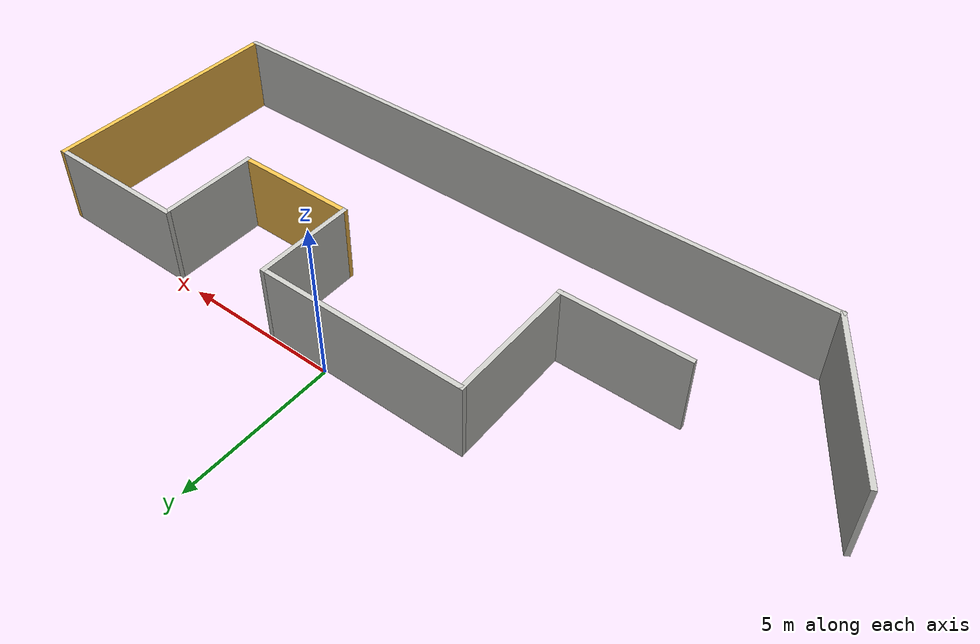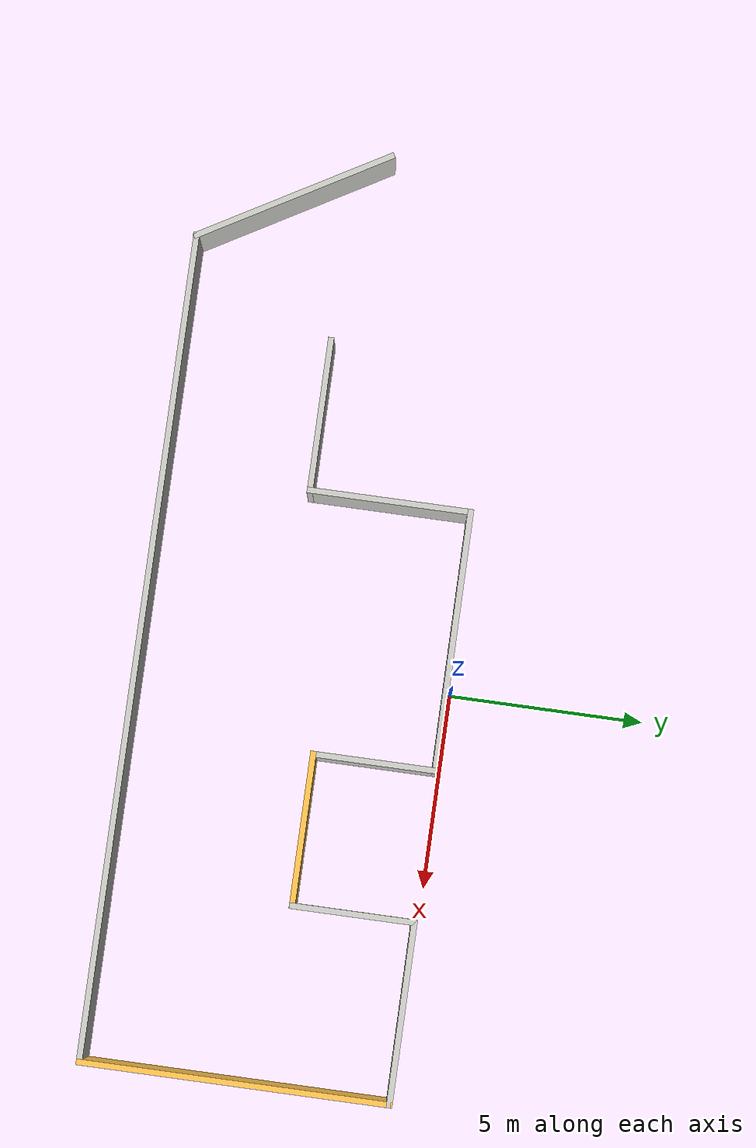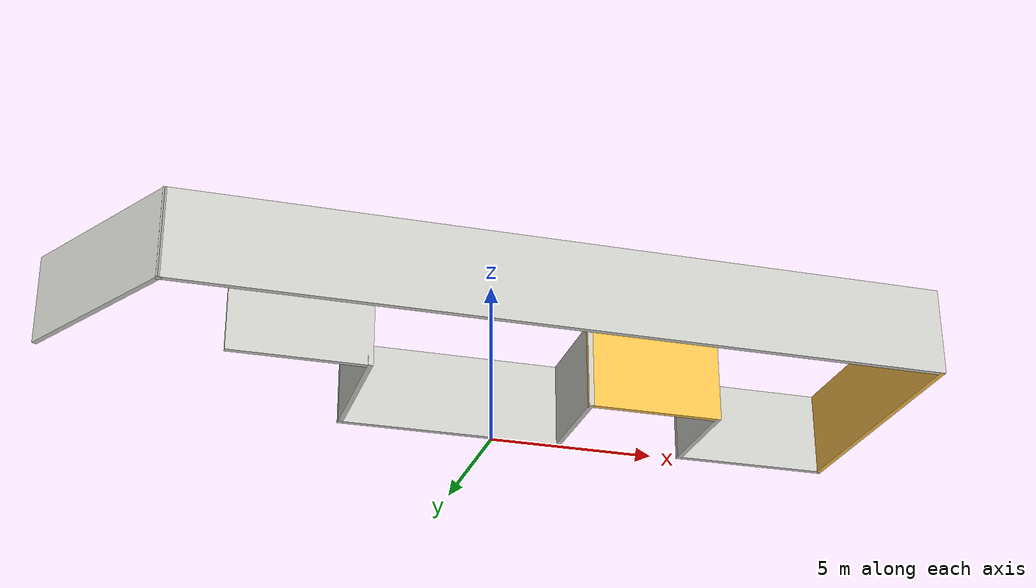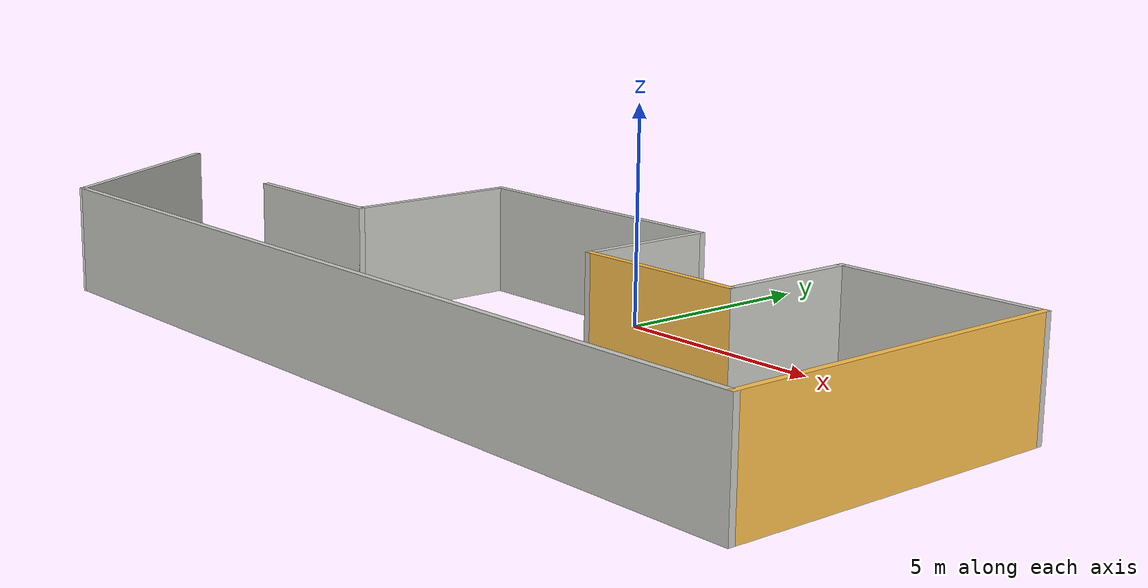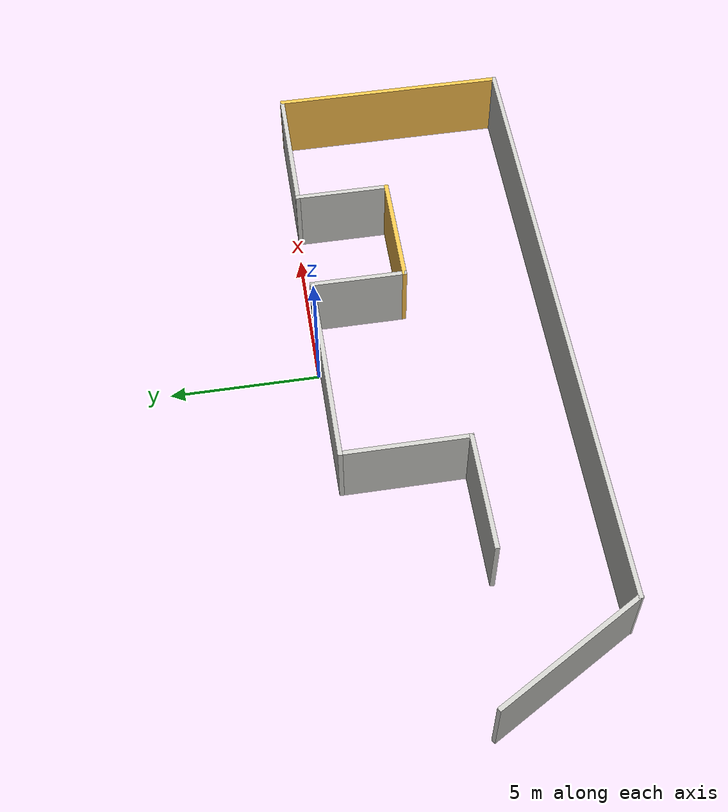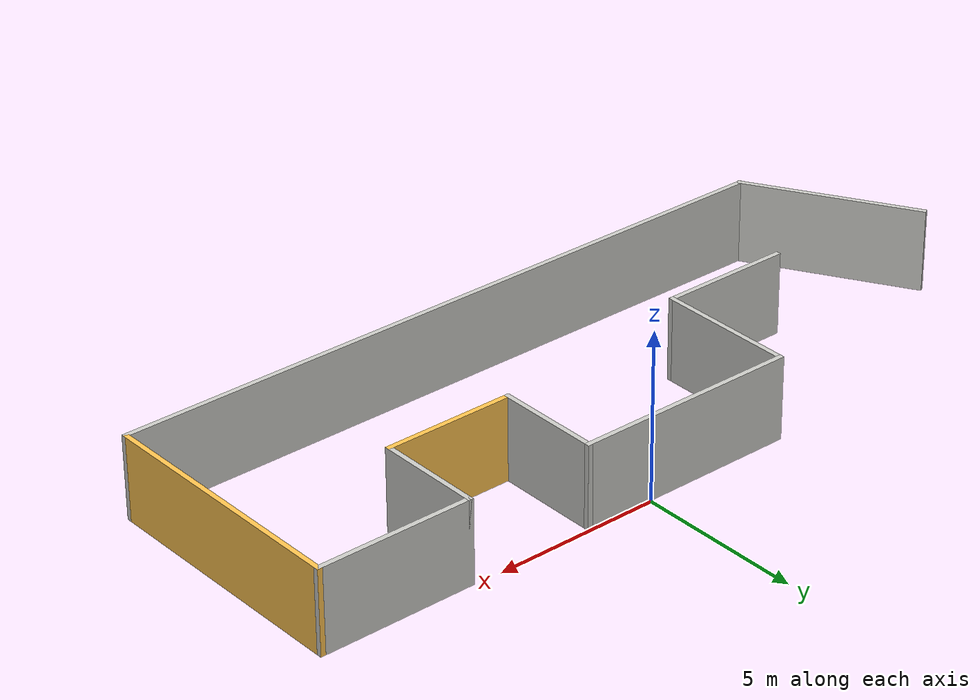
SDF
<?xml version='1.0'?>
<sdf version='1.7'>
  <model name='well'>
    <pose>-1.41551 -4.03664 0 0 -0 0</pose>
    <link name='Wall_37'>
      <collision name='Wall_37_Collision'>
        <geometry>
          <box>
            <size>3.25 0.15 2.5</size>
          </box>
        </geometry>
        <pose>0 0 1.25 0 -0 0</pose>
      </collision>
      <visual name='Wall_37_Visual'>
        <pose>0 0 1.25 0 -0 0</pose>
        <geometry>
          <box>
            <size>3.25 0.15 2.5</size>
          </box>
        </geometry>
        <material>
          <script>
            <uri>file://media/materials/scripts/gazebo.material</uri>
            <name>Gazebo/CeilingTiled</name>
          </script>
          <ambient>1 0.764706 0.305882 1</ambient>
        </material>
        <meta>
          <layer>0</layer>
        </meta>
      </visual>
      <pose>7.30123 2.36581 0 0 -0 1.5708</pose>
    </link>
    <link name='Wall_38'>
      <collision name='Wall_38_Collision'>
        <geometry>
          <box>
            <size>4.75 0.15 2.5</size>
          </box>
        </geometry>
        <pose>0 0 1.25 0 -0 0</pose>
      </collision>
      <visual name='Wall_38_Visual'>
        <pose>0 0 1.25 0 -0 0</pose>
        <geometry>
          <box>
            <size>4.75 0.15 2.5</size>
          </box>
        </geometry>
        <material>
          <script>
            <uri>file://media/materials/scripts/gazebo.material</uri>
            <name>Gazebo/CeilingTiled</name>
          </script>
          <ambient>1 0.764706 0.305882 1</ambient>
        </material>
        <meta>
          <layer>0</layer>
        </meta>
      </visual>
      <pose>9.60122 3.91581 0 0 -0 0</pose>
    </link>
    <link name='Wall_44'>
      <collision name='Wall_44_Collision'>
        <geometry>
          <box>
            <size>4 0.15 2.5</size>
          </box>
        </geometry>
        <pose>0 0 1.25 0 -0 0</pose>
      </collision>
      <visual name='Wall_44_Visual'>
        <pose>0 0 1.25 0 -0 0</pose>
        <geometry>
          <box>
            <size>4 0.15 2.5</size>
          </box>
        </geometry>
        <material>
          <script>
            <uri>file://media/materials/scripts/gazebo.material</uri>
            <name>Gazebo/Grey</name>
          </script>
          <ambient>1 0.764706 0.305882 1</ambient>
        </material>
        <meta>
          <layer>0</layer>
        </meta>
      </visual>
      <pose>5.37623 0.815813 0 0 -0 3.14159</pose>
    </link>
    <link name='Wall_45'>
      <collision name='Wall_45_Collision'>
        <geometry>
          <box>
            <size>3.25 0.15 2.5</size>
          </box>
        </geometry>
        <pose>0 0 1.25 0 -0 0</pose>
      </collision>
      <visual name='Wall_45_Visual'>
        <pose>0 0 1.25 0 -0 0</pose>
        <geometry>
          <box>
            <size>3.25 0.15 2.5</size>
          </box>
        </geometry>
        <material>
          <script>
            <uri>file://media/materials/scripts/gazebo.material</uri>
            <name>Gazebo/CeilingTiled</name>
          </script>
          <ambient>1 0.764706 0.305882 1</ambient>
        </material>
        <meta>
          <layer>0</layer>
        </meta>
      </visual>
      <pose>3.45123 2.36581 0 0 -0 1.5708</pose>
    </link>
    <link name='Wall_46'>
      <collision name='Wall_46_Collision'>
        <geometry>
          <box>
            <size>6.75 0.15 2.5</size>
          </box>
        </geometry>
        <pose>0 0 1.25 0 -0 0</pose>
      </collision>
      <visual name='Wall_46_Visual'>
        <pose>0 0 1.25 0 -0 0</pose>
        <geometry>
          <box>
            <size>6.75 0.15 2.5</size>
          </box>
        </geometry>
        <material>
          <script>
            <uri>file://media/materials/scripts/gazebo.material</uri>
            <name>Gazebo/CeilingTiled</name>
          </script>
          <ambient>1 0.764706 0.305882 1</ambient>
        </material>
        <meta>
          <layer>0</layer>
        </meta>
      </visual>
      <pose>0.151226 3.91581 0 0 -0 3.14159</pose>
    </link>
    <link name='Wall_50'>
      <collision name='Wall_50_Collision'>
        <geometry>
          <box>
            <size>4.25 0.15 2.5</size>
          </box>
        </geometry>
        <pose>0 0 1.25 0 -0 0</pose>
      </collision>
      <visual name='Wall_50_Visual'>
        <pose>0 0 1.25 0 -0 0</pose>
        <geometry>
          <box>
            <size>4.25 0.15 2.5</size>
          </box>
        </geometry>
        <material>
          <script>
            <uri>file://media/materials/scripts/gazebo.material</uri>
            <name>Gazebo/CeilingTiled</name>
          </script>
          <ambient>1 0.764706 0.305882 1</ambient>
        </material>
        <meta>
          <layer>0</layer>
        </meta>
      </visual>
      <pose>-3.14877 1.86581 0 0 -0 -1.5708</pose>
    </link>
    <link name='Wall_54'>
      <collision name='Wall_54_Collision'>
        <geometry>
          <box>
            <size>8 0.15 2.5</size>
          </box>
        </geometry>
        <pose>0 0 1.25 0 -0 0</pose>
      </collision>
      <visual name='Wall_54_Visual'>
        <pose>0 0 1.25 0 -0 0</pose>
        <geometry>
          <box>
            <size>8 0.15 2.5</size>
          </box>
        </geometry>
        <material>
          <script>
            <uri>file://media/materials/scripts/gazebo.material</uri>
            <name>Gazebo/Grey</name>
          </script>
          <ambient>1 0.764706 0.305882 1</ambient>
        </material>
        <meta>
          <layer>0</layer>
        </meta>
      </visual>
      <pose>11.9012 -0.009187 0 0 -0 -1.5708</pose>
    </link>
    <link name='Wall_58'>
      <collision name='Wall_58_Collision'>
        <geometry>
          <box>
            <size>4 0.15 2.5</size>
          </box>
        </geometry>
        <pose>0 0 1.25 0 -0 0</pose>
      </collision>
      <visual name='Wall_58_Visual'>
        <pose>0 0 1.25 0 -0 0</pose>
        <geometry>
          <box>
            <size>4 0.15 2.5</size>
          </box>
        </geometry>
        <material>
          <script>
            <uri>file://media/materials/scripts/gazebo.material</uri>
            <name>Gazebo/CeilingTiled</name>
          </script>
          <ambient>1 0.764706 0.305882 1</ambient>
        </material>
        <meta>
          <layer>0</layer>
        </meta>
      </visual>
      <pose>-5.07377 -0.184186 0 0 -0 3.14159</pose>
    </link>
    <link name='Wall_60'>
      <collision name='Wall_60_Collision'>
        <geometry>
          <box>
            <size>21.25 0.15 2.5</size>
          </box>
        </geometry>
        <pose>0 0 1.25 0 -0 0</pose>
      </collision>
      <visual name='Wall_60_Visual'>
        <pose>0 0 1.25 0 -0 0</pose>
        <geometry>
          <box>
            <size>21.25 0.15 2.5</size>
          </box>
        </geometry>
        <material>
          <script>
            <uri>file://media/materials/scripts/gazebo.material</uri>
            <name>Gazebo/CeilingTiled</name>
          </script>
          <ambient>1 0.764706 0.305882 1</ambient>
        </material>
        <meta>
          <layer>0</layer>
        </meta>
      </visual>
      <pose>1.35123 -3.93419 0 0 -0 3.14159</pose>
    </link>
    <link name='Wall_61'>
      <collision name='Wall_61_Collision'>
        <geometry>
          <box>
            <size>5.5 0.15 2.5</size>
          </box>
        </geometry>
        <pose>0 0 1.25 0 -0 0</pose>
      </collision>
      <visual name='Wall_61_Visual'>
        <pose>0 0 1.25 0 -0 0</pose>
        <geometry>
          <box>
            <size>5.5 0.15 2.5</size>
          </box>
        </geometry>
        <material>
          <script>
            <uri>file://media/materials/scripts/gazebo.material</uri>
            <name>Gazebo/CeilingTiled</name>
          </script>
          <ambient>1 0.764706 0.305882 1</ambient>
        </material>
        <meta>
          <layer>0</layer>
        </meta>
      </visual>
      <pose>-10.5363 -1.61757 0 0 -0 2.0944</pose>
    </link>
    <static>1</static>
  </model>
</sdf>
